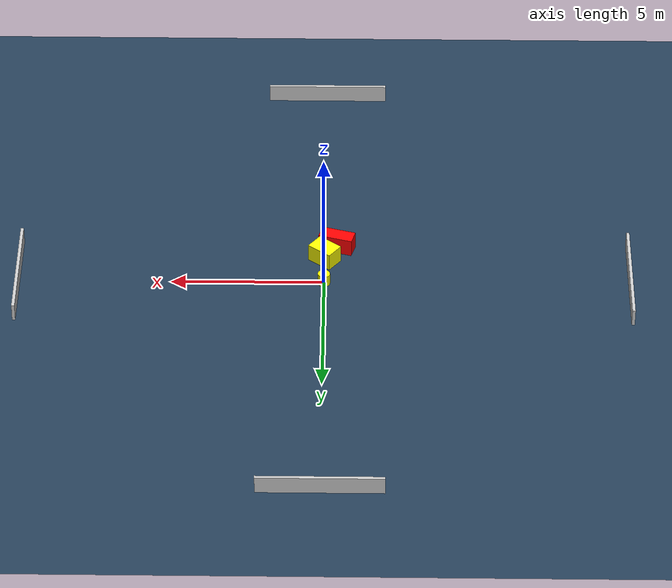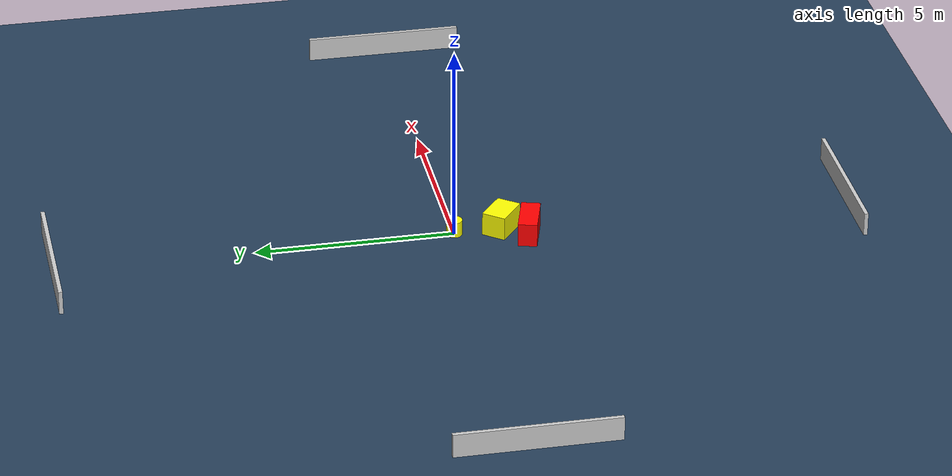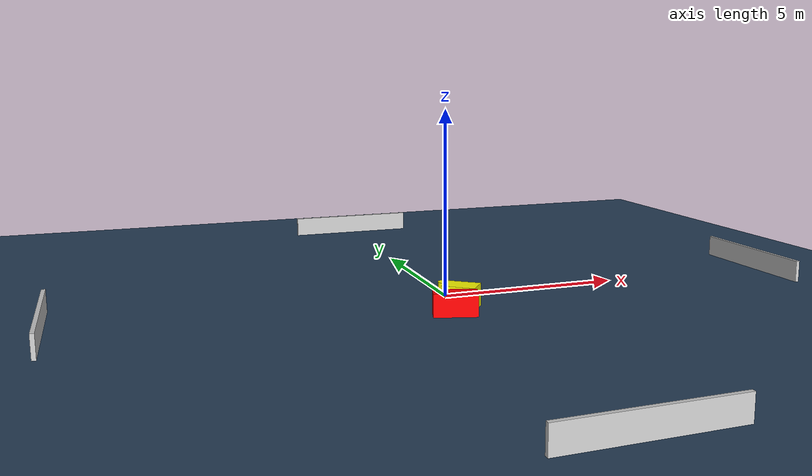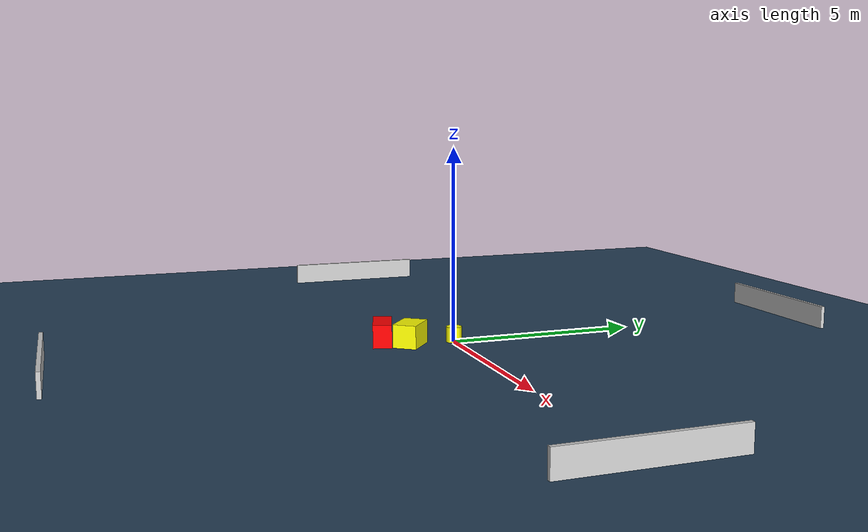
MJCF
<?xml version="1.0" ?>
<mujoco model="generated_environment">
  <option timestep="0.01" integrator="RK4" cone="elliptic"/>
  <default>
    <geom density="1"/>
  </default>
  <asset>
    <texture builtin="gradient" height="3072" name="skybox" rgb1="0.3 0.5 0.7" rgb2="0 0 0" type="skybox" width="512"/>
    <texture builtin="checker" height="300" name="groundplane" rgb1="0.2 0.3 0.4" rgb2="0.1 0.2 0.3" type="2d" width="300"/>
    <material name="groundplane" reflectance="0.2" texrepeat="5 5" texture="groundplane"/>
  </asset>
  <worldbody>
    <light dir="0 0 -1" directional="true" pos="0 0 1.5"/>
    <geom condim="3" friction="0.5 0.005 0.001" material="groundplane" name="floor" pos="0 0 0" size="0 0 0.05" type="plane"/>
    <body name="walls">
      <geom name="wall_1" condim="4" pos="-10.0 0.0 0.3" rgba="0.800000011920929 0.800000011920929 0.800000011920929 1.0" size="0.05 2.0 0.3" type="box"/>
      <geom name="wall_2" condim="4" pos="10.0 0.0 0.3" rgba="0.800000011920929 0.800000011920929 0.800000011920929 1.0" size="0.05 2.0 0.3" type="box"/>
      <geom name="wall_3" condim="4" pos="0.0 -10.0 0.3" rgba="0.800000011920929 0.800000011920929 0.800000011920929 1.0" size="2.0 0.05 0.3" type="box"/>
      <geom name="wall_4" condim="4" pos="0.0 10.0 0.3" rgba="0.800000011920929 0.800000011920929 0.800000011920929 1.0" size="2.0 0.05 0.3" type="box"/>
    </body>
    <body name="robot">
      <joint name="joint_x" type="slide" pos="0 0 0" axis="1 0 0"/>
      <joint name="joint_y" type="slide" pos="0 0 0" axis="0 1 0"/>
      <geom name="robot" type="cylinder" pos="0.0 0.0 0.2" size="0.2 0.2 0.0" mass="5.0" friction="1.0 0.005 0.0001" condim="4" rgba="1.0 1.0 0.0 1.0"/>
    </body>
    <body name="obstacle_1_movable">
      <geom name="obstacle_1_movable" condim="4" pos="-0.00604334222154824 -1.18731817029437 0.3" euler="0 0 52.04765618094066" friction="0.0 0.005 0.001" rgba="1.0 1.0 0.0 1.0" size="0.3094540071998747 0.43965525907601144 0.3" type="box" mass="0.1"/>
      <joint type="free"/>
    </body>
    <body name="obstacle_2_static">
      <geom name="obstacle_2_static" condim="4" pos="-0.4060983742742701 -1.8099485553866956 0.3" euler="0 0 253.88217796254634" friction="0.0 0.005 0.001" rgba="1.0 0.0 0.0 1.0" size="0.2413976159992286 0.5647142234015219 0.3" type="box"/>
    </body>
  </worldbody>
  <actuator>
    <motor name="actuator_x" joint="joint_x" gear="1" ctrlrange="-1 1"/>
    <motor name="actuator_y" joint="joint_y" gear="1" ctrlrange="-1 1"/>
  </actuator>
</mujoco>
